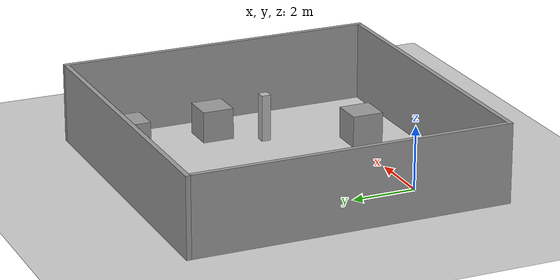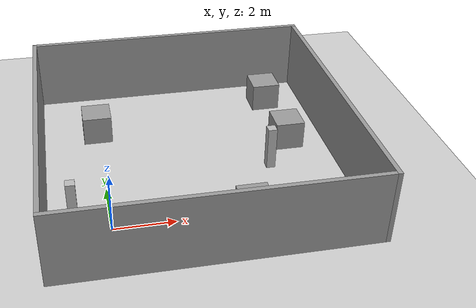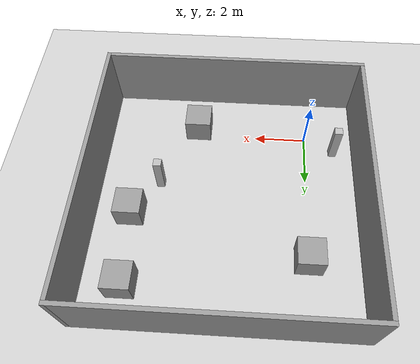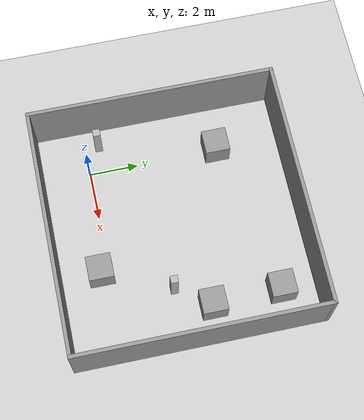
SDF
<sdf version="1.6">
 <world name="default">
  <model name="ground_plane">
   <static>1</static>
   <link name="link">
    <collision name="collision">
     <geometry><plane><normal>0 0 1</normal><size>100 100</size></plane></geometry>
     <surface><friction><ode><mu>100</mu><mu2>50</mu2></ode></friction></surface>
    </collision>
    <visual name="visual">
     <cast_shadows>0</cast_shadows>
     <geometry><plane><normal>0 0 1</normal><size>100 100</size></plane></geometry>
     <material>
      <script><uri>file://media/materials/scripts/gazebo.material</uri><name>Gazebo/Grey</name></script>
     </material>
    </visual>
   </link>
  </model>
  <light name="sun" type="directional">
   <pose>0 0 10 0 -0 0</pose>
   <diffuse>0.8 0.8 0.8 1</diffuse>
   <specular>0.2 0.2 0.2 1</specular>
   <attenuation>
    <range>1000</range>
    <constant>0.9</constant>
    <linear>0.01</linear>
    <quadratic>0.001</quadratic>
   </attenuation>
   <direction>-0.5 0.1 -0.9</direction>
  </light>
  <gravity>0 0 -9.8</gravity>
  <magnetic_field>6e-06 2.3e-05 -4.2e-05</magnetic_field>
  <atmosphere type="adiabatic"/>
  <physics name="default_physics" default="0" type="ode">
   <max_step_size>0.001</max_step_size>
   <real_time_factor>1</real_time_factor>
   <real_time_update_rate>1000</real_time_update_rate>
  </physics>
  <scene><ambient>0.4 0.4 0.4 1</ambient><background>0.7 0.7 0.7 1</background><shadows>1</shadows></scene>
  <audio><device>default</device></audio>
  <spherical_coordinates>
   <surface_model>EARTH_WGS84</surface_model>
   <latitude_deg>0</latitude_deg>
   <longitude_deg>0</longitude_deg>
   <elevation>0</elevation>
   <heading_deg>0</heading_deg>
  </spherical_coordinates>
  <model name="box">
   <pose>-1.12846 0.55646 0.751941 -0.001386 -0.004703 -0.001482</pose>
   <link name="link">
    <collision name="collision"><geometry><box><size>0.3 0.3 1.5</size></box></geometry></collision>
    <visual name="visual"><geometry><box><size>0.3 0.3 1.5</size></box></geometry></visual>
    <inertial>
     <inertia><ixx>1</ixx><ixy>0</ixy><ixz>0</ixz><iyy>1</iyy><iyz>0</iyz><izz>1</izz></inertia>
     <mass>1</mass>
    </inertial>
   </link>
   <plugin name="push_animate" filename="libanimated_box.so"/>
  </model>
  <model name="box1">
   <pose>5.6135 2.38419 0.751941 -0.001386 -0.004703 -0.001482</pose>
   <link name="link1">
    <collision name="collision1"><geometry><box><size>0.3 0.3 1.5</size></box></geometry></collision>
    <visual name="visual1"><geometry><box><size>0.3 0.3 1.5</size></box></geometry></visual>
    <inertial>
     <inertia><ixx>1</ixx><ixy>0</ixy><ixz>0</ixz><iyy>1</iyy><iyz>0</iyz><izz>1</izz></inertia>
     <mass>1</mass>
    </inertial>
   </link>
   <plugin name="push_animate1" filename="libanimated_box1.so"/>
  </model>
  <model name="Untitled">
   <pose>3 3 0 0 -0 0</pose>
   <link name="Wall_0">
    <collision name="Wall_0_Collision">
     <geometry><box><size>10.15 0.15 2.5</size></box></geometry>
     <pose>0 0 1.25 0 -0 0</pose>
    </collision>
    <visual name="Wall_0_Visual">
     <pose>0 0 1.25 0 -0 0</pose>
     <geometry><box><size>10.15 0.15 2.5</size></box></geometry>
     <material>
      <script><uri>file://media/materials/scripts/gazebo.material</uri><name>Gazebo/Grey</name></script>
      <ambient>1 1 1 1</ambient>
     </material>
     <meta><layer>0</layer></meta>
    </visual>
    <pose>-0 -5 0 0 -0 0</pose>
   </link>
   <link name="Wall_1">
    <collision name="Wall_1_Collision">
     <geometry><box><size>10.15 0.15 2.5</size></box></geometry>
     <pose>0 0 1.25 0 -0 0</pose>
    </collision>
    <visual name="Wall_1_Visual">
     <pose>0 0 1.25 0 -0 0</pose>
     <geometry><box><size>10.15 0.15 2.5</size></box></geometry>
     <material>
      <script><uri>file://media/materials/scripts/gazebo.material</uri><name>Gazebo/Grey</name></script>
      <ambient>1 1 1 1</ambient>
     </material>
     <meta><layer>0</layer></meta>
    </visual>
    <pose>5 -0 0 0 -0 1.5708</pose>
   </link>
   <link name="Wall_2">
    <collision name="Wall_2_Collision">
     <geometry><box><size>10.15 0.15 2.5</size></box></geometry>
     <pose>0 0 1.25 0 -0 0</pose>
    </collision>
    <visual name="Wall_2_Visual">
     <pose>0 0 1.25 0 -0 0</pose>
     <geometry><box><size>10.15 0.15 2.5</size></box></geometry>
     <material>
      <script><uri>file://media/materials/scripts/gazebo.material</uri><name>Gazebo/Grey</name></script>
      <ambient>1 1 1 1</ambient>
     </material>
     <meta><layer>0</layer></meta>
    </visual>
    <pose>-0 5 0 0 -0 3.14159</pose>
   </link>
   <link name="Wall_3">
    <collision name="Wall_3_Collision">
     <geometry><box><size>10.15 0.15 2.5</size></box></geometry>
     <pose>0 0 1.25 0 -0 0</pose>
    </collision>
    <visual name="Wall_3_Visual">
     <pose>0 0 1.25 0 -0 0</pose>
     <geometry><box><size>10.15 0.15 2.5</size></box></geometry>
     <material>
      <script><uri>file://media/materials/scripts/gazebo.material</uri><name>Gazebo/Grey</name></script>
      <ambient>1 1 1 1</ambient>
     </material>
     <meta><layer>0</layer></meta>
    </visual>
    <pose>-5 -0 0 0 -0 -1.5708</pose>
   </link>
   <static>1</static>
  </model>
  <model name="unit_box_clone">
   <pose>-0.028995 5.31137 0.499995 0 -1e-05 0</pose>
   <link name="link">
    <inertial>
     <mass>1</mass>
     <inertia>
      <ixx>0.166667</ixx>
      <ixy>0</ixy>
      <ixz>0</ixz>
      <iyy>0.166667</iyy>
      <iyz>0</iyz>
      <izz>0.166667</izz>
     </inertia>
    </inertial>
    <collision name="collision"><geometry><box><size>1 1 1</size></box></geometry></collision>
    <visual name="visual">
     <geometry><box><size>1 1 1</size></box></geometry>
     <material>
      <script><name>Gazebo/Grey</name><uri>file://media/materials/scripts/gazebo.material</uri></script>
     </material>
    </visual>
   </link>
  </model>
  <model name="unit_box_clone_0">
   <pose>6.57348 3.74153 0.499995 -1e-05 0 0</pose>
   <link name="link">
    <inertial>
     <mass>1</mass>
     <inertia>
      <ixx>0.166667</ixx>
      <ixy>0</ixy>
      <ixz>0</ixz>
      <iyy>0.166667</iyy>
      <iyz>0</iyz>
      <izz>0.166667</izz>
     </inertia>
    </inertial>
    <collision name="collision"><geometry><box><size>1 1 1</size></box></geometry></collision>
    <visual name="visual">
     <geometry><box><size>1 1 1</size></box></geometry>
     <material>
      <script><name>Gazebo/Grey</name><uri>file://media/materials/scripts/gazebo.material</uri></script>
     </material>
    </visual>
   </link>
  </model>
  <model name="unit_box_clone_1">
   <pose>4.3525 -0.338049 0.499995 0 -1e-05 0</pose>
   <link name="link">
    <inertial>
     <mass>1</mass>
     <inertia>
      <ixx>0.166667</ixx>
      <ixy>0</ixy>
      <ixz>0</ixz>
      <iyy>0.166667</iyy>
      <iyz>0</iyz>
      <izz>0.166667</izz>
     </inertia>
    </inertial>
    <collision name="collision"><geometry><box><size>1 1 1</size></box></geometry></collision>
    <visual name="visual">
     <geometry><box><size>1 1 1</size></box></geometry>
     <material>
      <script><name>Gazebo/Grey</name><uri>file://media/materials/scripts/gazebo.material</uri></script>
     </material>
    </visual>
   </link>
  </model>
  <model name="unit_box_clone_2">
   <pose>6.46575 6.52717 0.499995 1e-05 -0 0</pose>
   <link name="link">
    <inertial>
     <mass>1</mass>
     <inertia>
      <ixx>0.166667</ixx>
      <ixy>0</ixy>
      <ixz>0</ixz>
      <iyy>0.166667</iyy>
      <iyz>0</iyz>
      <izz>0.166667</izz>
     </inertia>
    </inertial>
    <collision name="collision"><geometry><box><size>1 1 1</size></box></geometry></collision>
    <visual name="visual">
     <geometry><box><size>1 1 1</size></box></geometry>
     <material>
      <script><name>Gazebo/Grey</name><uri>file://media/materials/scripts/gazebo.material</uri></script>
     </material>
    </visual>
   </link>
  </model>
 </world>
</sdf>
